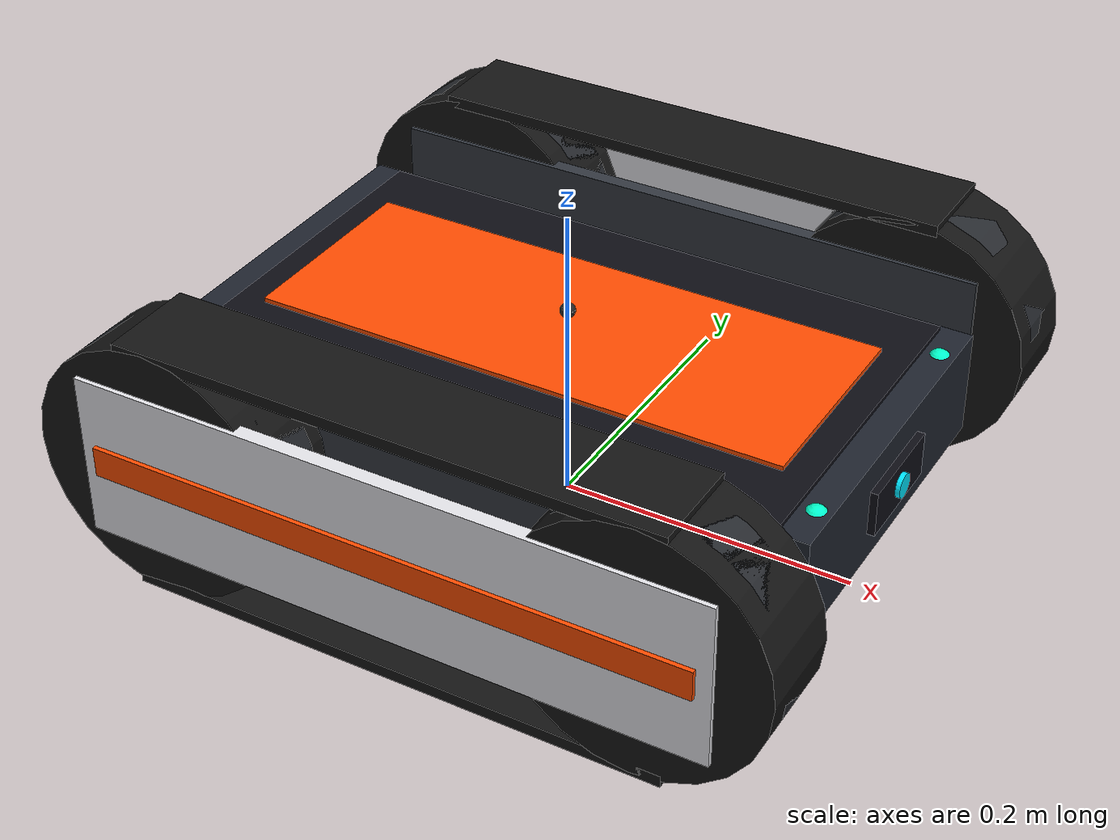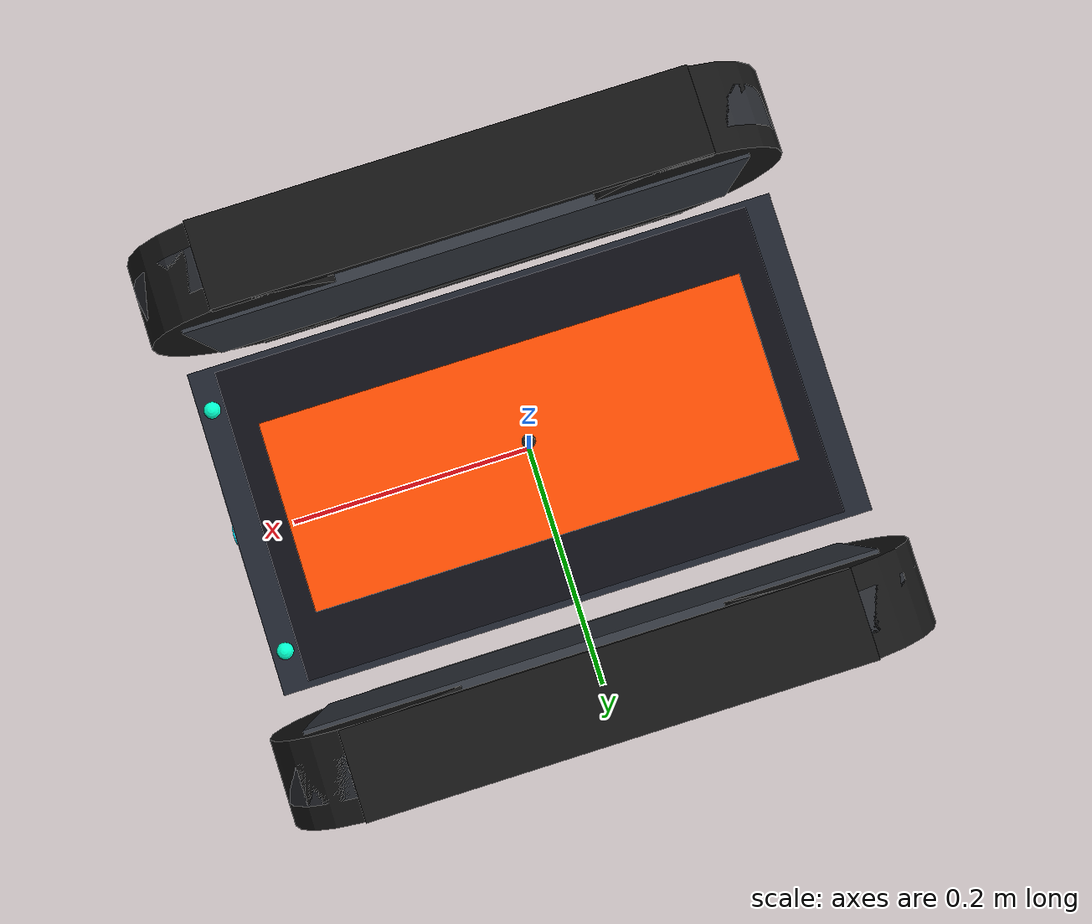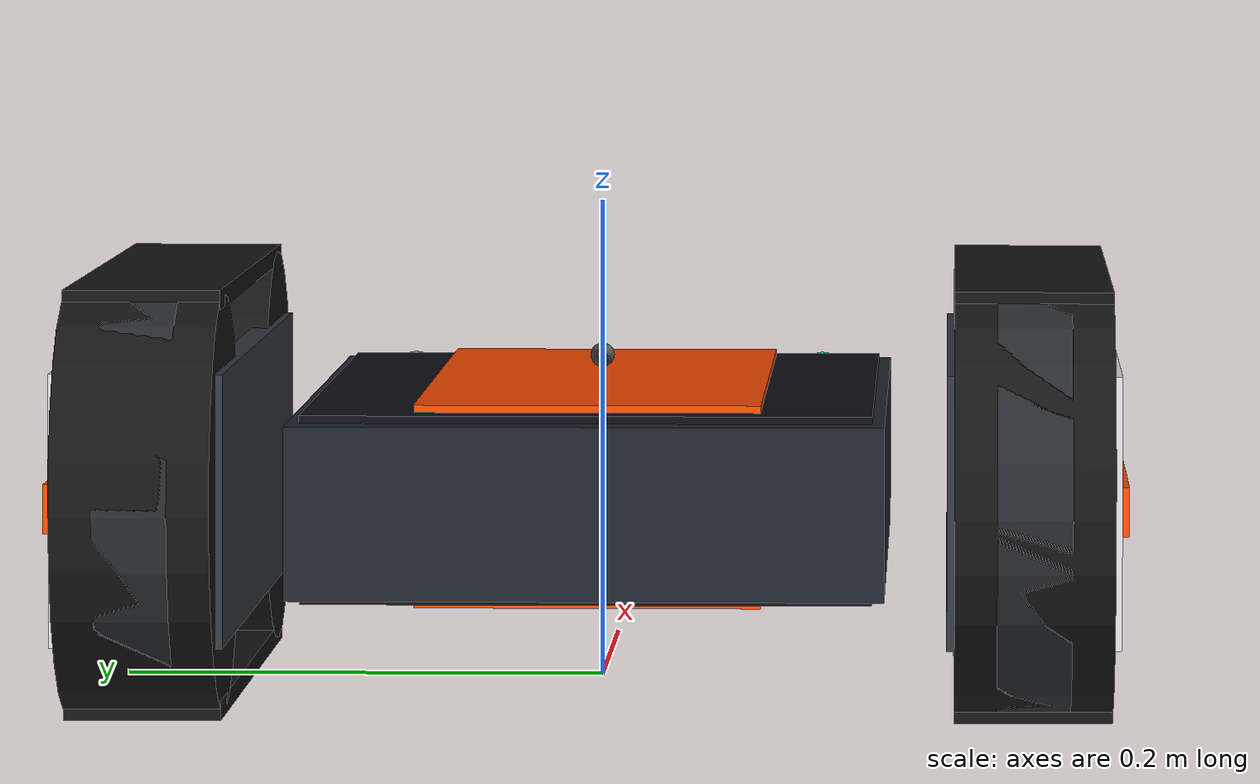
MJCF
<mujoco model="invertible_tracked_robot">
    <compiler angle="degree"/>

    <!-- Soft, balanced ambient light -->
    <visual>
        <headlight diffuse="0.4 0.4 0.4" ambient="0.5 0.5 0.5" specular="0.1 0.1 0.1"/>
    </visual>

    <default>
        <geom rgba="0.2 0.2 0.25 1" friction="1.5 0.3 0.1" solref="0.02 1" solimp="0.9 0.95 0.001"/>
        <joint type="hinge" damping="1.5" armature="0.10"/>
        <velocity kv="40" forcerange="-160 160"/>
    </default>

    <worldbody>
        <!-- Directional light without duplicate name attribute -->
        <light pos="1 1 4" dir="-0.2 -0.2 -1" diffuse="0.6 0.6 0.6" specular="0.2 0.2 0.2" castshadow="true"/>

        <body name="torso" pos="0 0 0.085">
            <freejoint name="root"/>

            <!-- Sensors & Camera Mount -->
            <camera name="front_cam" pos="0.22 0 0.0" xyaxes="0 -1 0 0 0 1"/>
            <site name="imu_site" pos="0 0 0"/>

            <!-- Lidar -->
            <site  name="lidar_0"    pos="0 0 0.05"   euler="0 90 0" />
            <site  name="lidar_45"   pos="0 0 0.05"   euler="0 90 45" />
            <site  name="lidar_90"   pos="0 0 0.05"   euler="0 90 90" />
            <site  name="lidar_135"  pos="0 0 0.05"   euler="0 90 135" />
            <site  name="lidar_180"  pos="0 0 0.05"   euler="0 90 180" />
            <site  name="lidar_225"  pos="0 0 0.05"   euler="0 90 225" />
            <site  name="lidar_270"  pos="0 0 0.05"   euler="0 90 270" />
            <site  name="lidar_315"  pos="0 0 0.05"   euler="0 90 315" />

            <!-- Camera Housing Visual Overlay -->
            <geom type="box" size="0.015 0.035 0.015" pos="0.21 0 0" rgba="0.05 0.05 0.08 1" contype="0" conaffinity="0"/>
            <geom type="cylinder" size="0.008 0.003" pos="0.225 0 0" euler="0 90 0" rgba="0.0 0.9 1.0 1" contype="0" conaffinity="0"/>

            <!-- Central Chassis Box (Dark Titanium Alloy) -->
            <geom name="chassis" type="box" size="0.22 0.12 0.035" rgba="0.12 0.14 0.18 1" mass="5.0" contype="0" conaffinity="0"/>

            <!-- Aesthetic Chassis Detailing (High-contrast Racing Stripe & Armor Panel) -->
            <geom type="box" size="0.20 0.115 0.002" pos="0 0 0.036" rgba="0.05 0.05 0.08 1" contype="0" conaffinity="0"/>
            <geom type="box" size="0.18 0.07 0.003" pos="0 0 0.038" rgba="1.0 0.3 0.0 1" contype="0" conaffinity="0"/>
            <geom type="box" size="0.20 0.115 0.002" pos="0 0 -0.036" rgba="0.05 0.05 0.08 1" contype="0" conaffinity="0"/>
            <geom type="box" size="0.18 0.07 0.003" pos="0 0 -0.038" rgba="1.0 0.3 0.0 1" contype="0" conaffinity="0"/>

            <!-- Structural Crossbars (Silver Steel) -->
            <geom type="cylinder" size="0.008 0.12" pos="0.10 0 0" euler="90 0 0" rgba="0.85 0.88 0.92 1" contype="0" conaffinity="0"/>
            <geom type="cylinder" size="0.008 0.12" pos="-0.10 0 0" euler="90 0 0" rgba="0.85 0.88 0.92 1" contype="0" conaffinity="0"/>

            <!-- Glowing Cyan LED Lights -->
            <geom type="sphere" size="0.008" pos="0.21 0.09 0.03" rgba="0.0 1.0 0.8 1" contype="0" conaffinity="0"/>
            <geom type="sphere" size="0.008" pos="0.21 -0.09 0.03" rgba="0.0 1.0 0.8 1" contype="0" conaffinity="0"/>

            <!-- LEFT TRACK MODULE (+Y) -->
            <geom name="left_side_plate" type="box" size="0.21 0.005 0.055" pos="0 0.21 0" rgba="0.9 0.9 0.92 1" mass="0.4" contype="0" conaffinity="0"/>
            <geom name="left_inner_plate" type="box" size="0.21 0.005 0.055" pos="0 0.15 0" rgba="0.2 0.22 0.25 1" mass="0.4" contype="0" conaffinity="0"/>
            <geom name="left_tread_top" type="box" size="0.18 0.032 0.004" pos="0 0.18 0.083" rgba="0.08 0.08 0.08 1" contype="0" conaffinity="0"/>
            <geom name="left_tread_bottom" type="box" size="0.18 0.032 0.004" pos="0 0.18 -0.083" rgba="0.08 0.08 0.08 1" contype="0" conaffinity="0"/>
            <geom name="left_tread_front" type="cylinder" size="0.085 0.032" pos="0.16 0.18 0" euler="90 0 0" rgba="0.08 0.08 0.08 1" contype="0" conaffinity="0"/>
            <geom name="left_tread_rear" type="cylinder" size="0.085 0.032" pos="-0.16 0.18 0" euler="90 0 0" rgba="0.08 0.08 0.08 1" contype="0" conaffinity="0"/>

            <!-- Left Side Trim -->
            <geom type="box" size="0.20 0.002 0.010" pos="0 0.216 0" rgba="1.0 0.3 0.0 1" contype="0" conaffinity="0"/>

            <body name="left_front_wheel" pos="0.16 0.18 0">
                <joint name="left_front_joint" axis="0 1 0"/>
                <geom type="cylinder" size="0.085" fromto="0 -0.015 0  0 0.015 0" rgba="0.15 0.16 0.18 1" mass="0.8"/>
                <!-- Outer Wheel Hub Cap -->
                <geom type="cylinder" size="0.06 0.016" euler="90 0 0" rgba="0.9 0.9 0.92 1" contype="0" conaffinity="0"/>
                <geom type="cylinder" size="0.025 0.017" euler="90 0 0" rgba="1.0 0.3 0.0 1" contype="0" conaffinity="0"/>
            </body>

            <body name="left_rear_wheel" pos="-0.16 0.18 0">
                <joint name="left_rear_joint" axis="0 1 0"/>
                <geom type="cylinder" size="0.085" fromto="0 -0.015 0  0 0.015 0" rgba="0.15 0.16 0.18 1" mass="0.8"/>
                <!-- Outer Wheel Hub Cap -->
                <geom type="cylinder" size="0.06 0.016" euler="90 0 0" rgba="0.9 0.9 0.92 1" contype="0" conaffinity="0"/>
                <geom type="cylinder" size="0.025 0.017" euler="90 0 0" rgba="1.0 0.3 0.0 1" contype="0" conaffinity="0"/>
            </body>

            <!-- RIGHT TRACK MODULE (-Y) -->
            <geom name="right_side_plate" type="box" size="0.21 0.005 0.055" pos="0 -0.21 0" rgba="0.9 0.9 0.92 1" mass="0.4" contype="0" conaffinity="0"/>
            <geom name="right_inner_plate" type="box" size="0.21 0.005 0.055" pos="0 -0.15 0" rgba="0.2 0.22 0.25 1" mass="0.4" contype="0" conaffinity="0"/>
            <geom name="right_tread_top" type="box" size="0.18 0.032 0.004" pos="0 -0.18 0.083" rgba="0.08 0.08 0.08 1" contype="0" conaffinity="0"/>
            <geom name="right_tread_bottom" type="box" size="0.18 0.032 0.004" pos="0 -0.18 -0.083" rgba="0.08 0.08 0.08 1" contype="0" conaffinity="0"/>
            <geom name="right_tread_front" type="cylinder" size="0.085 0.032" pos="0.16 -0.18 0" euler="90 0 0" rgba="0.08 0.08 0.08 1" contype="0" conaffinity="0"/>
            <geom name="right_tread_rear" type="cylinder" size="0.085 0.032" pos="-0.16 -0.18 0" euler="90 0 0" rgba="0.08 0.08 0.08 1" contype="0" conaffinity="0"/>

            <!-- Right Side Trim -->
            <geom type="box" size="0.20 0.002 0.010" pos="0 -0.216 0" rgba="1.0 0.3 0.0 1" contype="0" conaffinity="0"/>

            <body name="right_front_wheel" pos="0.16 -0.18 0">
                <joint name="right_front_joint" axis="0 1 0"/>
                <geom type="cylinder" size="0.085" fromto="0 -0.015 0  0 0.015 0" rgba="0.15 0.16 0.18 1" mass="0.8"/>
                <!-- Outer Wheel Hub Cap -->
                <geom type="cylinder" size="0.06 0.016" euler="90 0 0" rgba="0.9 0.9 0.92 1" contype="0" conaffinity="0"/>
                <geom type="cylinder" size="0.025 0.017" euler="90 0 0" rgba="1.0 0.3 0.0 1" contype="0" conaffinity="0"/>
            </body>

            <body name="right_rear_wheel" pos="-0.16 -0.18 0">
                <joint name="right_rear_joint" axis="0 1 0"/>
                <geom type="cylinder" size="0.085" fromto="0 -0.015 0  0 0.015 0" rgba="0.15 0.16 0.18 1" mass="0.8"/>
                <!-- Outer Wheel Hub Cap -->
                <geom type="cylinder" size="0.06 0.016" euler="90 0 0" rgba="0.9 0.9 0.92 1" contype="0" conaffinity="0"/>
                <geom type="cylinder" size="0.025 0.017" euler="90 0 0" rgba="1.0 0.3 0.0 1" contype="0" conaffinity="0"/>
            </body>
        </body>
    </worldbody>

    <actuator>
        <velocity joint="left_front_joint" name="left_drive_f"/>
        <velocity joint="left_rear_joint" name="left_drive_r"/>
        <velocity joint="right_front_joint" name="right_drive_f"/>
        <velocity joint="right_rear_joint" name="right_drive_r"/>
    </actuator>

    <sensor>
        <accelerometer name="accel" site="imu_site"/>
        <gyro name="gyro" site="imu_site"/>
        <magnetometer name="mag" site="imu_site"/>

    </sensor>
</mujoco>
